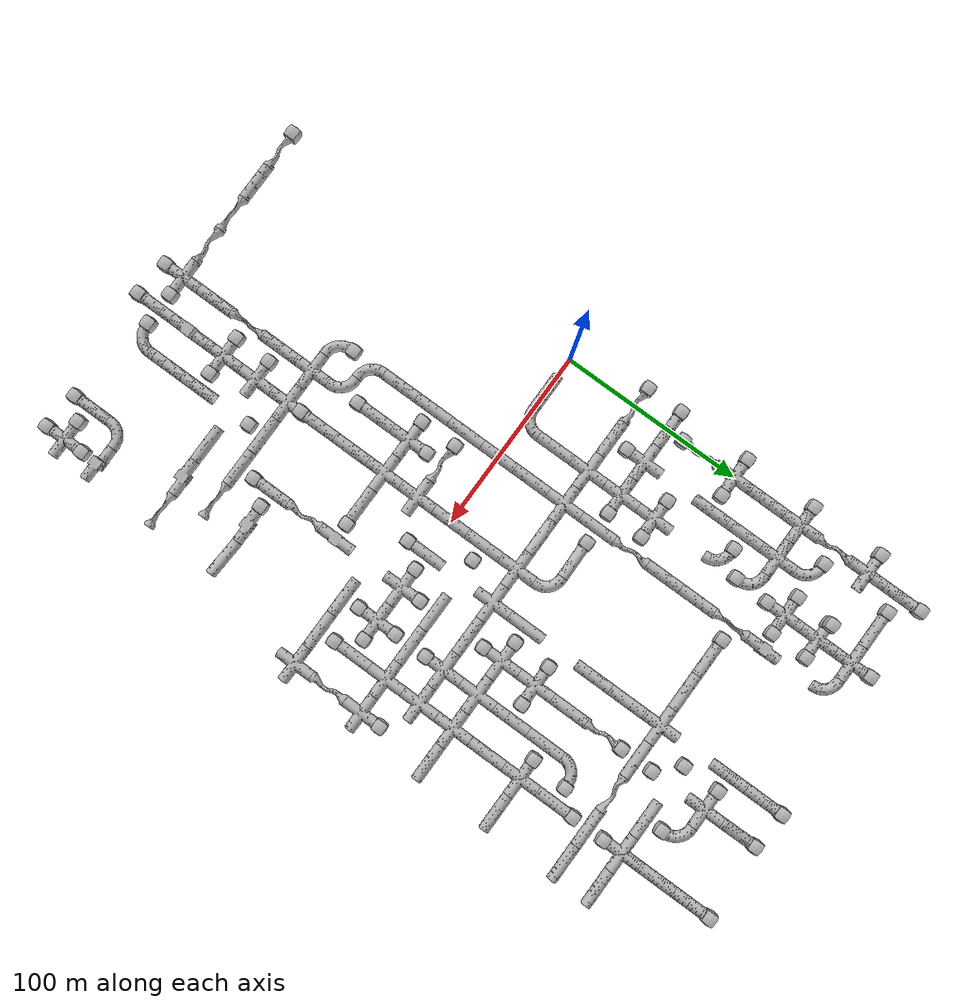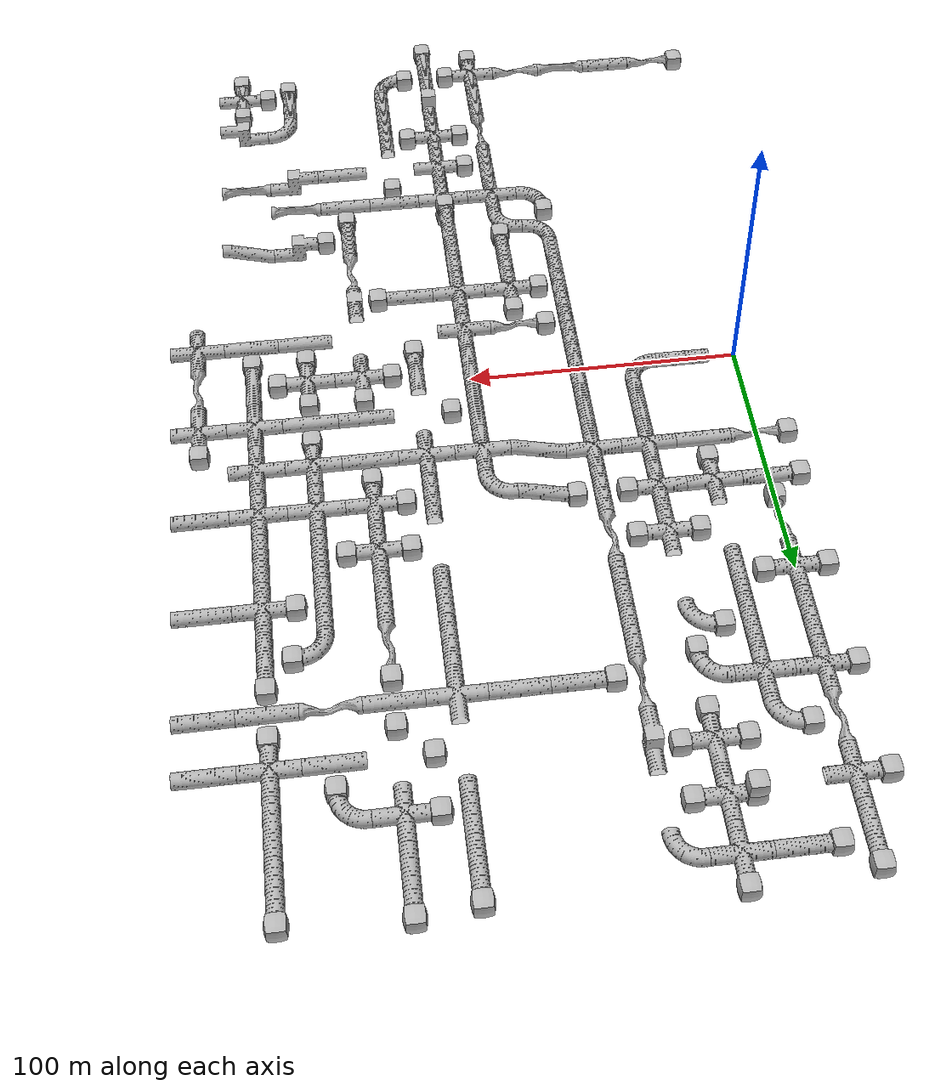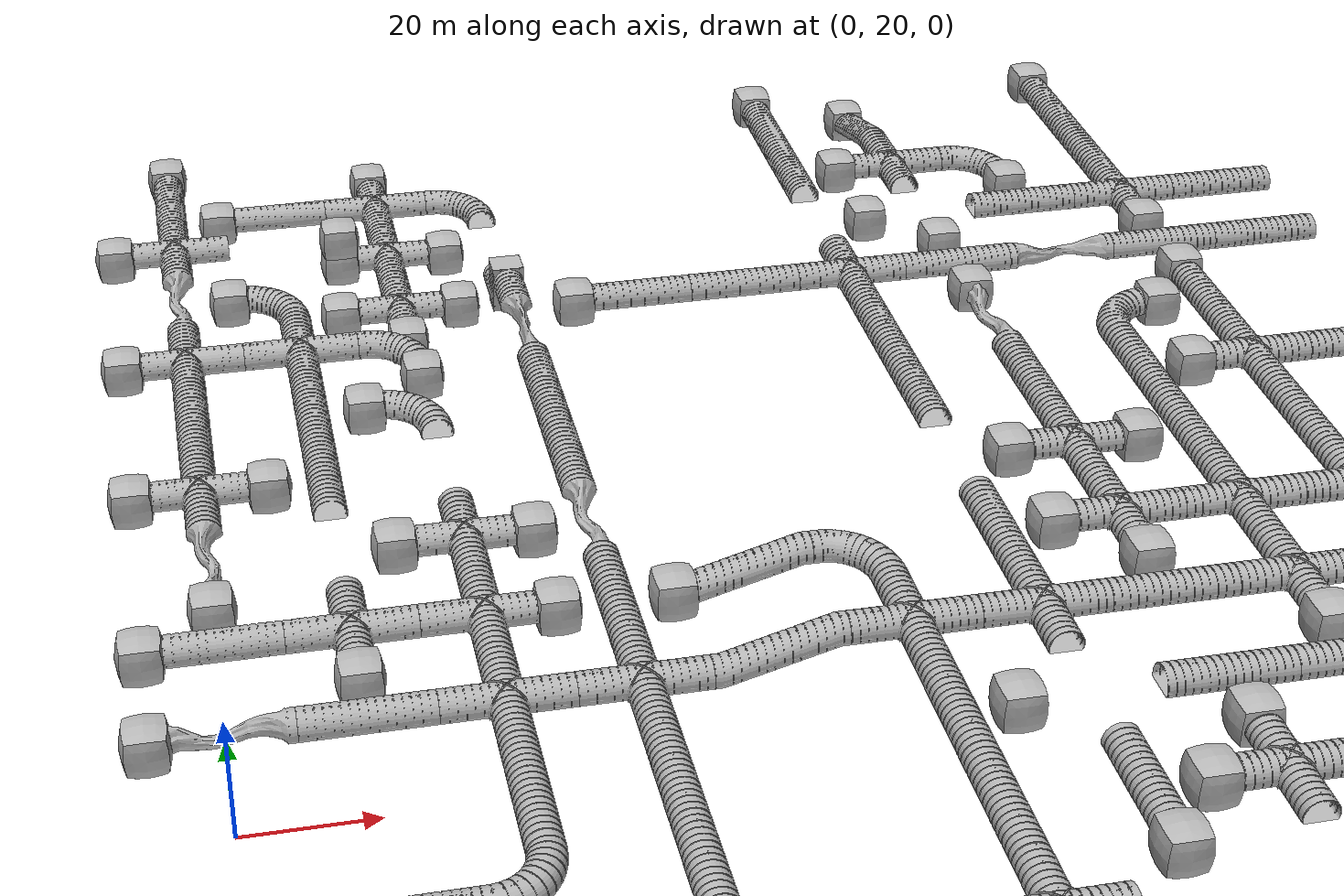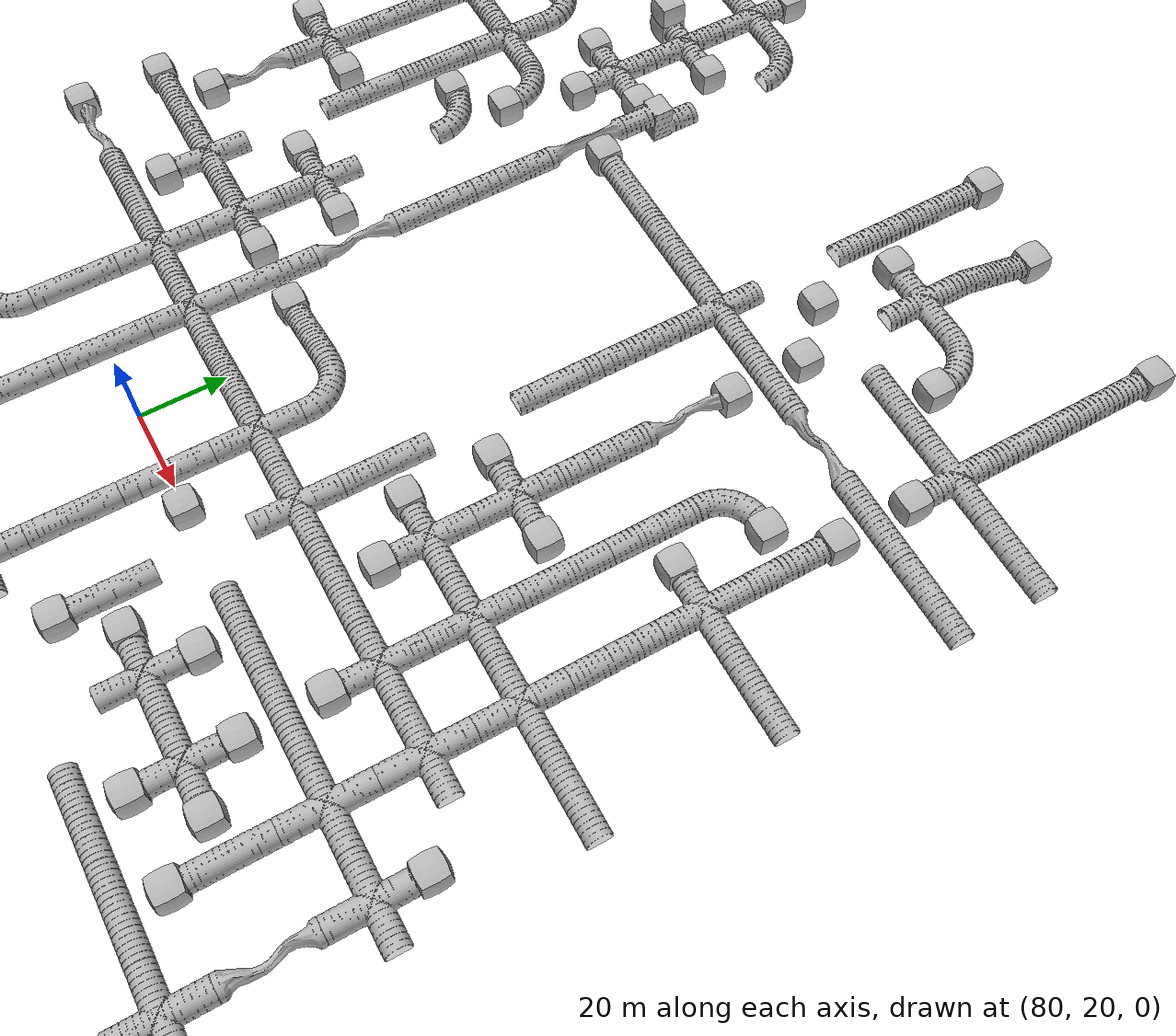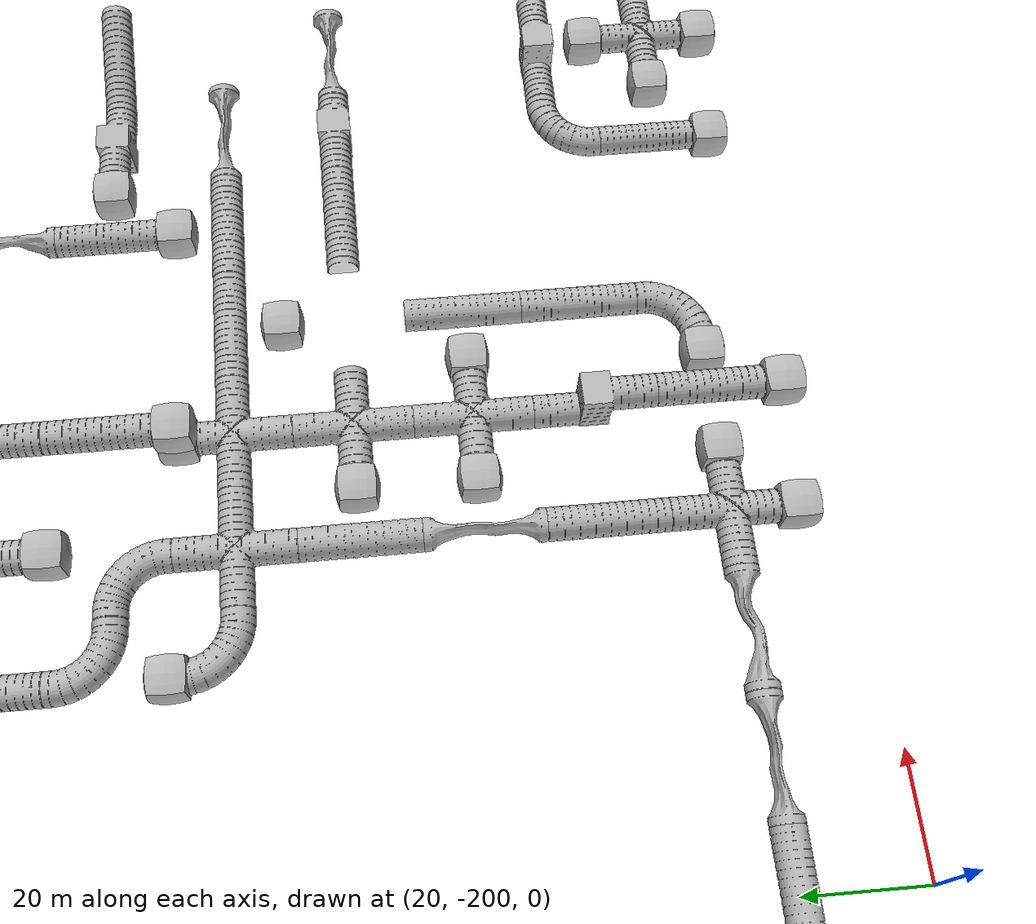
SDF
<sdf version="1.6">
 <world name="tunnel_circuit_01">
  <include><name>artifact_origin</name><pose>2 4 0.5 0 0 0</pose><uri>model://fiducial</uri></include>
  <include>
   <name>tile_1</name>
   <uri>model://tunnel_tile_5</uri>
   <pose>0.000000 200.000000 0.000000 0 0 3.141593</pose>
  </include>
  <include>
   <name>tile_2</name>
   <uri>model://tunnel_tile_blocker</uri>
   <pose>0.000000 211.000000 0.000000 0 0 0.000000</pose>
  </include>
  <include>
   <name>tile_3</name>
   <uri>model://tunnel_tile_5</uri>
   <pose>20.000000 200.000000 -5.000000 0 0 4.712389</pose>
  </include>
  <include>
   <name>tile_4</name>
   <uri>model://tunnel_tile_blocker</uri>
   <pose>9.000000 200.000000 -5.000000 0 0 0.000000</pose>
  </include>
  <include>
   <name>tile_5</name>
   <uri>model://tunnel_tile_1</uri>
   <pose>40.000000 200.000000 -5.000000 0 0 0.000000</pose>
  </include>
  <include>
   <name>tile_6</name>
   <uri>model://tunnel_tile_blocker</uri>
   <pose>40.000000 211.000000 -5.000000 0 0 0.000000</pose>
  </include>
  <include>
   <name>tile_7</name>
   <uri>model://tunnel_tile_2</uri>
   <pose>60.000000 200.000000 -5.000000 0 0 4.712389</pose>
  </include>
  <include>
   <name>extinguisher_1</name>
   <uri>model://Extinguisher</uri>
   <pose>60.000000 191.000000 -5.000000 0 0 0.000000</pose>
  </include>
  <include>
   <name>tile_8</name>
   <uri>model://tunnel_tile_5</uri>
   <pose>120.000000 200.000000 5.000000 0 0 3.141593</pose>
  </include>
  <include>
   <name>tile_9</name>
   <uri>model://tunnel_tile_blocker</uri>
   <pose>120.000000 211.000000 5.000000 0 0 0.000000</pose>
  </include>
  <include>
   <name>tile_10</name>
   <uri>model://tunnel_tile_6</uri>
   <pose>140.000000 200.000000 0.000000 0 0 3.141593</pose>
  </include>
  <include>
   <name>tile_11</name>
   <uri>model://tunnel_tile_blocker</uri>
   <pose>140.000000 211.000000 0.000000 0 0 0.000000</pose>
  </include>
  <include>
   <name>backpack_1</name>
   <uri>model://Backpack</uri>
   <pose>140.000000 200.000000 2.500000 -0.314159 0 0.000000</pose>
  </include>
  <include>
   <name>tile_12</name>
   <uri>model://tunnel_tile_5</uri>
   <pose>180.000000 200.000000 5.000000 0 0 3.141593</pose>
  </include>
  <include>
   <name>tile_13</name>
   <uri>model://tunnel_tile_blocker</uri>
   <pose>180.000000 211.000000 5.000000 0 0 0.000000</pose>
  </include>
  <include>
   <name>tile_22</name>
   <uri>model://tunnel_tile_1</uri>
   <pose>0.000000 180.000000 0.000000 0 0 0.000000</pose>
  </include>
  <include>
   <name>tile_23</name>
   <uri>model://tunnel_tile_blocker</uri>
   <pose>-11.000000 180.000000 0.000000 0 0 0.000000</pose>
  </include>
  <include>
   <name>tile_25</name>
   <uri>model://tunnel_tile_blocker</uri>
   <pose>31.000000 180.000000 0.000000 0 0 0.000000</pose>
  </include>
  <include>
   <name>tile_26</name>
   <uri>model://tunnel_tile_1</uri>
   <pose>40.000000 180.000000 -5.000000 0 0 0.000000</pose>
  </include>
  <include>
   <name>tile_27</name>
   <uri>model://tunnel_tile_blocker</uri>
   <pose>51.000000 180.000000 -5.000000 0 0 0.000000</pose>
  </include>
  <include>
   <name>tile_28</name>
   <uri>model://tunnel_tile_blocker</uri>
   <pose>31.000000 180.000000 -5.000000 0 0 0.000000</pose>
  </include>
  <include>
   <name>tile_30</name>
   <uri>model://tunnel_tile_5</uri>
   <pose>120.000000 180.000000 5.000000 0 0 3.141593</pose>
  </include>
  <include>
   <name>tile_31</name>
   <uri>model://tunnel_tile_1</uri>
   <pose>140.000000 180.000000 5.000000 0 0 0.000000</pose>
  </include>
  <include>
   <name>tile_32</name>
   <uri>model://tunnel_tile_blocker</uri>
   <pose>129.000000 180.000000 5.000000 0 0 0.000000</pose>
  </include>
  <include>
   <name>tile_33</name>
   <uri>model://tunnel_tile_2</uri>
   <pose>160.000000 180.000000 5.000000 0 0 4.712389</pose>
  </include>
  <include>
   <name>tile_34</name>
   <uri>model://tunnel_tile_blocker</uri>
   <pose>160.000000 169.000000 5.000000 0 0 0.000000</pose>
  </include>
  <include>
   <name>tile_35</name>
   <uri>model://tunnel_tile_5</uri>
   <pose>180.000000 180.000000 5.000000 0 0 3.141593</pose>
  </include>
  <include>
   <name>tile_40</name>
   <uri>model://constrained_tunnel_tile_short</uri>
   <pose>0.000000 160.000000 0.000000 0 0 3.141593</pose>
  </include>
  <include>
   <name>tile_41</name>
   <uri>model://tunnel_tile_2</uri>
   <pose>20.000000 160.000000 0.000000 0 0 4.712389</pose>
  </include>
  <include>
   <name>tile_42</name>
   <uri>model://tunnel_tile_blocker</uri>
   <pose>9.000000 160.000000 0.000000 0 0 0.000000</pose>
  </include>
  <include>
   <name>tile_43</name>
   <uri>model://tunnel_tile_1</uri>
   <pose>40.000000 160.000000 -5.000000 0 0 0.000000</pose>
  </include>
  <include>
   <name>tile_44</name>
   <uri>model://tunnel_tile_blocker</uri>
   <pose>51.000000 160.000000 -5.000000 0 0 0.000000</pose>
  </include>
  <include>
   <name>tile_45</name>
   <uri>model://tunnel_tile_blocker</uri>
   <pose>29.000000 160.000000 -5.000000 0 0 0.000000</pose>
  </include>
  <include>
   <name>tile_46</name>
   <uri>model://tunnel_tile_blocker</uri>
   <pose>40.000000 149.000000 -5.000000 0 0 0.000000</pose>
  </include>
  <include>
   <name>tile_47</name>
   <uri>model://tunnel_tile_7</uri>
   <pose>60.000000 160.000000 -5.000000 0 0 3.141593</pose>
  </include>
  <include>
   <name>tile_50</name>
   <uri>model://tunnel_tile_blocker</uri>
   <pose>140.000000 149.000000 5.000000 0 0 0.000000</pose>
  </include>
  <include>
   <name>tile_51</name>
   <uri>model://tunnel_tile_blocker</uri>
   <pose>129.000000 160.000000 5.000000 0 0 0.000000</pose>
  </include>
  <include>
   <name>tile_52</name>
   <uri>model://tunnel_tile_5</uri>
   <pose>160.000000 160.000000 5.000000 0 0 4.712389</pose>
  </include>
  <include>
   <name>tile_53</name>
   <uri>model://tunnel_tile_1</uri>
   <pose>180.000000 160.000000 5.000000 0 0 0.000000</pose>
  </include>
  <include>
   <name>tile_54</name>
   <uri>model://tunnel_tile_blocker</uri>
   <pose>180.000000 149.000000 5.000000 0 0 0.000000</pose>
  </include>
  <include>
   <name>tile_55</name>
   <uri>model://tunnel_tile_5</uri>
   <pose>200.000000 160.000000 5.000000 0 0 4.712389</pose>
  </include>
  <include>
   <name>tile_67</name>
   <uri>model://tunnel_tile_1</uri>
   <pose>0.000000 140.000000 0.000000 0 0 0.000000</pose>
  </include>
  <include>
   <name>tile_68</name>
   <uri>model://tunnel_tile_blocker</uri>
   <pose>-11.000000 140.000000 0.000000 0 0 0.000000</pose>
  </include>
  <include>
   <name>tile_69</name>
   <uri>model://tunnel_tile_1</uri>
   <pose>20.000000 140.000000 0.000000 0 0 0.000000</pose>
  </include>
  <include>
   <name>tile_70</name>
   <uri>model://tunnel_tile_2</uri>
   <pose>40.000000 140.000000 0.000000 0 0 4.712389</pose>
  </include>
  <include>
   <name>tile_71</name>
   <uri>model://tunnel_tile_blocker</uri>
   <pose>40.000000 129.000000 0.000000 0 0 0.000000</pose>
  </include>
  <include>
   <name>tile_72</name>
   <uri>model://constrained_tunnel_tile_tall</uri>
   <pose>60.000000 140.000000 0.000000 0 0 3.141593</pose>
  </include>
  <include>
   <name>tile_73</name>
   <uri>model://tunnel_tile_5</uri>
   <pose>80.000000 140.000000 5.000000 0 0 4.712389</pose>
  </include>
  <include>
   <name>tile_74</name>
   <uri>model://tunnel_tile_blocker</uri>
   <pose>69.000000 140.000000 5.000000 0 0 0.000000</pose>
  </include>
  <include>
   <name>tile_75</name>
   <uri>model://tunnel_tile_5</uri>
   <pose>100.000000 140.000000 5.000000 0 0 4.712389</pose>
  </include>
  <include>
   <name>tile_76</name>
   <uri>model://tunnel_tile_1</uri>
   <pose>120.000000 140.000000 5.000000 0 0 0.000000</pose>
  </include>
  <include>
   <name>tile_77</name>
   <uri>model://tunnel_tile_5</uri>
   <pose>140.000000 140.000000 5.000000 0 0 1.570796</pose>
  </include>
  <include>
   <name>tile_78</name>
   <uri>model://constrained_tunnel_tile_short</uri>
   <pose>160.000000 140.000000 5.000000 0 0 1.570796</pose>
  </include>
  <include>
   <name>tile_79</name>
   <uri>model://tunnel_tile_5</uri>
   <pose>180.000000 140.000000 5.000000 0 0 1.570796</pose>
  </include>
  <include>
   <name>tile_80</name>
   <uri>model://tunnel_tile_5</uri>
   <pose>200.000000 140.000000 5.000000 0 0 1.570796</pose>
  </include>
  <include>
   <name>tile_90</name>
   <uri>model://tunnel_tile_5</uri>
   <pose>0.000000 120.000000 0.000000 0 0 0.000000</pose>
  </include>
  <include>
   <name>backpack_3</name>
   <uri>model://Backpack</uri>
   <pose>0.000000 120.000000 0.000000 0 0 0.000000</pose>
  </include>
  <include>
   <name>tile_91</name>
   <uri>model://tunnel_tile_5</uri>
   <pose>20.000000 120.000000 0.000000 0 0 3.141593</pose>
  </include>
  <include>
   <name>tile_92</name>
   <uri>model://tunnel_tile_2</uri>
   <pose>40.000000 120.000000 0.000000 0 0 4.712389</pose>
  </include>
  <include>
   <name>tile_93</name>
   <uri>model://tunnel_tile_blocker</uri>
   <pose>29.000000 120.000000 0.000000 0 0 0.000000</pose>
  </include>
  <include>
   <name>tile_94</name>
   <uri>model://tunnel_tile_5</uri>
   <pose>60.000000 120.000000 0.000000 0 0 3.141593</pose>
  </include>
  <include>
   <name>tile_95</name>
   <uri>model://tunnel_tile_5</uri>
   <pose>120.000000 120.000000 5.000000 0 0 3.141593</pose>
  </include>
  <include>
   <name>tile_96</name>
   <uri>model://constrained_tunnel_tile_short</uri>
   <pose>140.000000 120.000000 5.000000 0 0 3.141593</pose>
  </include>
  <include>
   <name>tile_97</name>
   <uri>model://tunnel_tile_blocker</uri>
   <pose>140.000000 131.000000 5.000000 0 0 0.000000</pose>
  </include>
  <include>
   <name>tile_98</name>
   <uri>model://tunnel_tile_2</uri>
   <pose>160.000000 120.000000 5.000000 0 0 0.000000</pose>
  </include>
  <include>
   <name>tile_99</name>
   <uri>model://tunnel_tile_blocker</uri>
   <pose>171.000000 120.000000 5.000000 0 0 0.000000</pose>
  </include>
  <include>
   <name>extinguisher_2</name>
   <uri>model://Extinguisher</uri>
   <pose>162.000000 119.000000 5.000000 0 0 0.000000</pose>
  </include>
  <include>
   <name>tile_100</name>
   <uri>model://tunnel_tile_5</uri>
   <pose>180.000000 120.000000 5.000000 0 0 3.141593</pose>
  </include>
  <include>
   <name>tile_101</name>
   <uri>model://tunnel_tile_blocker</uri>
   <pose>180.000000 131.000000 5.000000 0 0 0.000000</pose>
  </include>
  <include>
   <name>tile_114</name>
   <uri>model://tunnel_tile_1</uri>
   <pose>0.000000 100.000000 0.000000 0 0 0.000000</pose>
  </include>
  <include>
   <name>tile_115</name>
   <uri>model://tunnel_tile_blocker</uri>
   <pose>11.000000 100.000000 0.000000 0 0 0.000000</pose>
  </include>
  <include>
   <name>tile_116</name>
   <uri>model://tunnel_tile_blocker</uri>
   <pose>-11.000000 100.000000 0.000000 0 0 0.000000</pose>
  </include>
  <include>
   <name>tile_117</name>
   <uri>model://tunnel_tile_5</uri>
   <pose>20.000000 100.000000 0.000000 0 0 3.141593</pose>
  </include>
  <include>
   <name>tile_119</name>
   <uri>model://tunnel_tile_5</uri>
   <pose>60.000000 100.000000 0.000000 0 0 3.141593</pose>
  </include>
  <include>
   <name>tile_120</name>
   <uri>model://tunnel_tile_5</uri>
   <pose>120.000000 100.000000 5.000000 0 0 3.141593</pose>
  </include>
  <include>
   <name>tile_121</name>
   <uri>model://tunnel_tile_5</uri>
   <pose>140.000000 100.000000 5.000000 0 0 3.141593</pose>
  </include>
  <include>
   <name>tile_122</name>
   <uri>model://tunnel_tile_5</uri>
   <pose>160.000000 100.000000 5.000000 0 0 3.141593</pose>
  </include>
  <include>
   <name>tile_123</name>
   <uri>model://tunnel_tile_1</uri>
   <pose>180.000000 100.000000 5.000000 0 0 0.000000</pose>
  </include>
  <include>
   <name>tile_124</name>
   <uri>model://tunnel_tile_blocker</uri>
   <pose>169.000000 100.000000 5.000000 0 0 0.000000</pose>
  </include>
  <include>
   <name>tile_125</name>
   <uri>model://tunnel_tile_5</uri>
   <pose>200.000000 100.000000 5.000000 0 0 1.570796</pose>
  </include>
  <include>
   <name>tile_132</name>
   <uri>model://constrained_tunnel_tile_short</uri>
   <pose>0.000000 80.000000 0.000000 0 0 0.000000</pose>
  </include>
  <include>
   <name>tile_133</name>
   <uri>model://tunnel_tile_blocker</uri>
   <pose>0.000000 69.000000 0.000000 0 0 0.000000</pose>
  </include>
  <include>
   <name>tile_135</name>
   <uri>model://tunnel_tile_1</uri>
   <pose>40.000000 80.000000 0.000000 0 0 0.000000</pose>
  </include>
  <include>
   <name>tile_136</name>
   <uri>model://tunnel_tile_blocker</uri>
   <pose>29.000000 80.000000 0.000000 0 0 0.000000</pose>
  </include>
  <include>
   <name>tile_137</name>
   <uri>model://tunnel_tile_blocker</uri>
   <pose>51.000000 80.000000 0.000000 0 0 0.000000</pose>
  </include>
  <include>
   <name>tile_138</name>
   <uri>model://constrained_tunnel_tile_short</uri>
   <pose>60.000000 80.000000 0.000000 0 0 3.141593</pose>
  </include>
  <include>
   <name>tile_140</name>
   <uri>model://tunnel_tile_1</uri>
   <pose>140.000000 80.000000 5.000000 0 0 0.000000</pose>
  </include>
  <include>
   <name>tile_141</name>
   <uri>model://tunnel_tile_blocker</uri>
   <pose>129.000000 80.000000 5.000000 0 0 0.000000</pose>
  </include>
  <include>
   <name>tile_142</name>
   <uri>model://tunnel_tile_blocker</uri>
   <pose>151.000000 80.000000 5.000000 0 0 0.000000</pose>
  </include>
  <include>
   <name>tile_143</name>
   <uri>model://tunnel_tile_5</uri>
   <pose>160.000000 80.000000 5.000000 0 0 3.141593</pose>
  </include>
  <include>
   <name>tile_144</name>
   <uri>model://tunnel_tile_5</uri>
   <pose>180.000000 80.000000 5.000000 0 0 3.141593</pose>
  </include>
  <include>
   <name>tile_155</name>
   <uri>model://tunnel_tile_5</uri>
   <pose>0.000000 60.000000 0.000000 0 0 4.712389</pose>
  </include>
  <include>
   <name>tile_156</name>
   <uri>model://tunnel_tile_blocker</uri>
   <pose>-11.000000 60.000000 0.000000 0 0 0.000000</pose>
  </include>
  <include>
   <name>tile_157</name>
   <uri>model://tunnel_tile_1</uri>
   <pose>20.000000 60.000000 0.000000 0 0 0.000000</pose>
  </include>
  <include>
   <name>tile_158</name>
   <uri>model://tunnel_tile_blocker</uri>
   <pose>20.000000 49.000000 0.000000 0 0 0.000000</pose>
  </include>
  <include>
   <name>tile_159</name>
   <uri>model://tunnel_tile_1</uri>
   <pose>40.000000 60.000000 0.000000 0 0 0.000000</pose>
  </include>
  <include>
   <name>tile_160</name>
   <uri>model://tunnel_tile_blocker</uri>
   <pose>51.000000 60.000000 0.000000 0 0 0.000000</pose>
  </include>
  <include>
   <name>tile_161</name>
   <uri>model://tunnel_tile_5</uri>
   <pose>60.000000 60.000000 0.000000 0 0 3.141593</pose>
  </include>
  <include>
   <name>tile_162</name>
   <uri>model://tunnel_tile_6</uri>
   <pose>80.000000 60.000000 0.000000 0 0 4.712389</pose>
  </include>
  <include>
   <name>tile_163</name>
   <uri>model://tunnel_tile_blocker</uri>
   <pose>69.000000 60.000000 0.000000 0 0 0.000000</pose>
  </include>
  <include>
   <name>tile_164</name>
   <uri>model://tunnel_tile_2</uri>
   <pose>100.000000 60.000000 5.000000 0 0 4.712389</pose>
  </include>
  <include>
   <name>tile_165</name>
   <uri>model://tunnel_tile_5</uri>
   <pose>120.000000 60.000000 5.000000 0 0 3.141593</pose>
  </include>
  <include>
   <name>tile_166</name>
   <uri>model://tunnel_tile_1</uri>
   <pose>140.000000 60.000000 5.000000 0 0 0.000000</pose>
  </include>
  <include>
   <name>tile_167</name>
   <uri>model://tunnel_tile_blocker</uri>
   <pose>140.000000 49.000000 5.000000 0 0 0.000000</pose>
  </include>
  <include>
   <name>tile_168</name>
   <uri>model://tunnel_tile_blocker</uri>
   <pose>129.000000 60.000000 5.000000 0 0 0.000000</pose>
  </include>
  <include>
   <name>tile_169</name>
   <uri>model://tunnel_tile_1</uri>
   <pose>160.000000 60.000000 5.000000 0 0 0.000000</pose>
  </include>
  <include>
   <name>tile_170</name>
   <uri>model://tunnel_tile_1</uri>
   <pose>180.000000 60.000000 5.000000 0 0 0.000000</pose>
  </include>
  <include>
   <name>tile_171</name>
   <uri>model://tunnel_tile_5</uri>
   <pose>200.000000 60.000000 5.000000 0 0 1.570796</pose>
  </include>
  <include>
   <name>tile_182</name>
   <uri>model://constrained_tunnel_tile_short</uri>
   <pose>0.000000 40.000000 0.000000 0 0 4.712389</pose>
  </include>
  <include>
   <name>tile_183</name>
   <uri>model://tunnel_tile_blocker</uri>
   <pose>-11.000000 40.000000 0.000000 0 0 0.000000</pose>
  </include>
  <include>
   <name>tile_184</name>
   <uri>model://tunnel_tile_5</uri>
   <pose>20.000000 40.000000 0.000000 0 0 4.712389</pose>
  </include>
  <include>
   <name>tile_185</name>
   <uri>model://tunnel_tile_1</uri>
   <pose>40.000000 40.000000 0.000000 0 0 0.000000</pose>
  </include>
  <include>
   <name>tile_186</name>
   <uri>model://tunnel_tile_1</uri>
   <pose>60.000000 40.000000 0.000000 0 0 0.000000</pose>
  </include>
  <include>
   <name>tile_187</name>
   <uri>model://tunnel_tile_6</uri>
   <pose>80.000000 40.000000 0.000000 0 0 4.712389</pose>
  </include>
  <include>
   <name>tile_188</name>
   <uri>model://tunnel_tile_1</uri>
   <pose>100.000000 40.000000 5.000000 0 0 0.000000</pose>
  </include>
  <include>
   <name>tile_189</name>
   <uri>model://tunnel_tile_1</uri>
   <pose>120.000000 40.000000 5.000000 0 0 0.000000</pose>
  </include>
  <include>
   <name>tile_190</name>
   <uri>model://tunnel_tile_5</uri>
   <pose>140.000000 40.000000 5.000000 0 0 1.570796</pose>
  </include>
  <include>
   <name>tile_191</name>
   <uri>model://tunnel_tile_1</uri>
   <pose>160.000000 40.000000 5.000000 0 0 0.000000</pose>
  </include>
  <include>
   <name>tile_192</name>
   <uri>model://tunnel_tile_blocker</uri>
   <pose>160.000000 29.000000 5.000000 0 0 0.000000</pose>
  </include>
  <include>
   <name>tile_193</name>
   <uri>model://tunnel_tile_1</uri>
   <pose>180.000000 40.000000 5.000000 0 0 0.000000</pose>
  </include>
  <include>
   <name>tile_205</name>
   <uri>model://tunnel_tile_5</uri>
   <pose>40.000000 20.000000 0.000000 0 0 3.141593</pose>
  </include>
  <include>
   <name>tile_206</name>
   <uri>model://tunnel_tile_5</uri>
   <pose>60.000000 20.000000 0.000000 0 0 0.000000</pose>
  </include>
  <include>
   <name>tile_207</name>
   <uri>model://tunnel_tile_5</uri>
   <pose>100.000000 20.000000 5.000000 0 0 0.000000</pose>
  </include>
  <include>
   <name>tile_209</name>
   <uri>model://tunnel_tile_blocker</uri>
   <pose>109.000000 20.000000 5.000000 0 0 0.000000</pose>
  </include>
  <include>
   <name>tile_210</name>
   <uri>model://tunnel_tile_5</uri>
   <pose>140.000000 20.000000 5.000000 0 0 1.570796</pose>
  </include>
  <include>
   <name>tile_211</name>
   <uri>model://tunnel_tile_5</uri>
   <pose>160.000000 20.000000 5.000000 0 0 1.570796</pose>
  </include>
  <include>
   <name>tile_212</name>
   <uri>model://tunnel_tile_1</uri>
   <pose>180.000000 20.000000 5.000000 0 0 0.000000</pose>
  </include>
  <include>
   <name>tile_213</name>
   <uri>model://tunnel_tile_1</uri>
   <pose>200.000000 20.000000 5.000000 0 0 0.000000</pose>
  </include>
  <include>
   <name>tile_214</name>
   <uri>model://tunnel_tile_blocker</uri>
   <pose>200.000000 31.000000 5.000000 0 0 0.000000</pose>
  </include>
  <include>
   <name>tile_229</name>
   <uri>model://tunnel_tile_5</uri>
   <pose>20.000000 0.000000 0.000000 0 0 1.570796</pose>
  </include>
  <include>
   <name>tile_230</name>
   <uri>model://tunnel_tile_2</uri>
   <pose>40.000000 0.000000 0.000000 0 0 3.141593</pose>
  </include>
  <include>
   <name>tile_231</name>
   <uri>model://tunnel_tile_5</uri>
   <pose>60.000000 0.000000 0.000000 0 0 0.000000</pose>
  </include>
  <include>
   <name>tile_232</name>
   <uri>model://tunnel_tile_5</uri>
   <pose>100.000000 0.000000 5.000000 0 0 0.000000</pose>
  </include>
  <include>
   <name>tile_233</name>
   <uri>model://tunnel_tile_5</uri>
   <pose>120.000000 0.000000 5.000000 0 0 0.000000</pose>
  </include>
  <include>
   <name>tile_234</name>
   <uri>model://tunnel_tile_blocker</uri>
   <pose>120.000000 -11.000000 5.000000 0 0 0.000000</pose>
  </include>
  <include>
   <name>tile_235</name>
   <uri>model://tunnel_tile_1</uri>
   <pose>140.000000 0.000000 5.000000 0 0 0.000000</pose>
  </include>
  <include>
   <name>tile_236</name>
   <uri>model://tunnel_tile_blocker</uri>
   <pose>129.000000 0.000000 5.000000 0 0 0.000000</pose>
  </include>
  <include>
   <name>tile_237</name>
   <uri>model://tunnel_tile_blocker</uri>
   <pose>140.000000 11.000000 5.000000 0 0 0.000000</pose>
  </include>
  <include>
   <name>tile_238</name>
   <uri>model://tunnel_tile_1</uri>
   <pose>160.000000 0.000000 5.000000 0 0 0.000000</pose>
  </include>
  <include>
   <name>tile_239</name>
   <uri>model://tunnel_tile_blocker</uri>
   <pose>160.000000 11.000000 5.000000 0 0 0.000000</pose>
  </include>
  <include>
   <name>tile_240</name>
   <uri>model://tunnel_tile_blocker</uri>
   <pose>160.000000 -11.000000 5.000000 0 0 0.000000</pose>
  </include>
  <include>
   <name>tile_241</name>
   <uri>model://tunnel_tile_blocker</uri>
   <pose>171.000000 0.000000 5.000000 0 0 0.000000</pose>
  </include>
  <include>
   <name>tile_242</name>
   <uri>model://tunnel_tile_5</uri>
   <pose>180.000000 0.000000 5.000000 0 0 0.000000</pose>
  </include>
  <include>
   <name>tile_243</name>
   <uri>model://tunnel_tile_blocker</uri>
   <pose>180.000000 -11.000000 5.000000 0 0 0.000000</pose>
  </include>
  <include>
   <name>tile_244</name>
   <uri>model://constrained_tunnel_tile_short</uri>
   <pose>200.000000 0.000000 5.000000 0 0 0.000000</pose>
  </include>
  <include>
   <name>tile_256</name>
   <uri>model://tunnel_tile_5</uri>
   <pose>60.000000 -20.000000 0.000000 0 0 0.000000</pose>
  </include>
  <include>
   <name>tile_257</name>
   <uri>model://constrained_tunnel_tile_short</uri>
   <pose>80.000000 -20.000000 5.000000 0 0 4.712389</pose>
  </include>
  <include>
   <name>tile_258</name>
   <uri>model://tunnel_tile_blocker</uri>
   <pose>69.000000 -20.000000 5.000000 0 0 0.000000</pose>
  </include>
  <include>
   <name>tile_259</name>
   <uri>model://tunnel_tile_1</uri>
   <pose>100.000000 -20.000000 5.000000 0 0 0.000000</pose>
  </include>
  <include>
   <name>tile_262</name>
   <uri>model://tunnel_tile_5</uri>
   <pose>160.000000 -20.000000 5.000000 0 0 1.570796</pose>
  </include>
  <include>
   <name>phone_2</name>
   <uri>model://Phone</uri>
   <pose>168.000000 -18.400000 5.004000 -1.570796 0 2.356194</pose>
  </include>
  <include>
   <name>tile_263</name>
   <uri>model://tunnel_tile_5</uri>
   <pose>180.000000 -20.000000 5.000000 0 0 1.570796</pose>
  </include>
  <include>
   <name>tile_264</name>
   <uri>model://tunnel_tile_1</uri>
   <pose>200.000000 -20.000000 5.000000 0 0 0.000000</pose>
  </include>
  <include>
   <name>tile_279</name>
   <uri>model://tunnel_tile_5</uri>
   <pose>60.000000 -40.000000 0.000000 0 0 0.000000</pose>
  </include>
  <include>
   <name>tile_280</name>
   <uri>model://tunnel_tile_1</uri>
   <pose>80.000000 -40.000000 5.000000 0 0 0.000000</pose>
  </include>
  <include>
   <name>tile_281</name>
   <uri>model://tunnel_tile_blocker</uri>
   <pose>80.000000 -29.000000 5.000000 0 0 0.000000</pose>
  </include>
  <include>
   <name>tile_282</name>
   <uri>model://tunnel_tile_blocker</uri>
   <pose>69.000000 -40.000000 5.000000 0 0 0.000000</pose>
  </include>
  <include>
   <name>tile_283</name>
   <uri>model://tunnel_tile_1</uri>
   <pose>100.000000 -40.000000 5.000000 0 0 0.000000</pose>
  </include>
  <include>
   <name>tile_284</name>
   <uri>model://tunnel_tile_5</uri>
   <pose>120.000000 -40.000000 5.000000 0 0 1.570796</pose>
  </include>
  <include>
   <name>tile_285</name>
   <uri>model://tunnel_tile_blocker</uri>
   <pose>131.000000 -40.000000 5.000000 0 0 0.000000</pose>
  </include>
  <include>
   <name>tile_286</name>
   <uri>model://tunnel_tile_7</uri>
   <pose>140.000000 -40.000000 0.000000 0 0 0.000000</pose>
  </include>
  <include>
   <name>tile_299</name>
   <uri>model://tunnel_tile_5</uri>
   <pose>60.000000 -60.000000 0.000000 0 0 0.000000</pose>
  </include>
  <include>
   <name>tile_300</name>
   <uri>model://tunnel_tile_5</uri>
   <pose>80.000000 -60.000000 5.000000 0 0 0.000000</pose>
  </include>
  <include>
   <name>tile_301</name>
   <uri>model://tunnel_tile_blocker</uri>
   <pose>80.000000 -71.000000 5.000000 0 0 0.000000</pose>
  </include>
  <include>
   <name>phone_4</name>
   <uri>model://Phone</uri>
   <pose>81.500000 -60.000000 5.004000 -1.570796 0 0.000000</pose>
  </include>
  <include>
   <name>tile_302</name>
   <uri>model://tunnel_tile_5</uri>
   <pose>100.000000 -60.000000 5.000000 0 0 0.000000</pose>
  </include>
  <include>
   <name>tile_303</name>
   <uri>model://constrained_tunnel_tile_short</uri>
   <pose>140.000000 -60.000000 0.000000 0 0 0.000000</pose>
  </include>
  <include>
   <name>tile_318</name>
   <uri>model://tunnel_tile_2</uri>
   <pose>60.000000 -80.000000 0.000000 0 0 1.570796</pose>
  </include>
  <include>
   <name>tile_319</name>
   <uri>model://tunnel_tile_2</uri>
   <pose>80.000000 -80.000000 0.000000 0 0 4.712389</pose>
  </include>
  <include>
   <name>tile_320</name>
   <uri>model://tunnel_tile_5</uri>
   <pose>100.000000 -80.000000 5.000000 0 0 0.000000</pose>
  </include>
  <include>
   <name>tile_321</name>
   <uri>model://tunnel_tile_blocker</uri>
   <pose>100.000000 -91.000000 5.000000 0 0 0.000000</pose>
  </include>
  <include>
   <name>tile_322</name>
   <uri>model://tunnel_tile_5</uri>
   <pose>140.000000 -80.000000 0.000000 0 0 0.000000</pose>
  </include>
  <include>
   <name>tile_323</name>
   <uri>model://tunnel_tile_blocker</uri>
   <pose>140.000000 -91.000000 0.000000 0 0 0.000000</pose>
  </include>
  <include>
   <name>tile_324</name>
   <uri>model://tunnel_tile_7</uri>
   <pose>160.000000 -80.000000 -5.000000 0 0 1.570796</pose>
  </include>
  <include>
   <name>tile_325</name>
   <uri>model://tunnel_tile_blocker</uri>
   <pose>149.000000 -80.000000 0.000000 0 0 0.000000</pose>
  </include>
  <include>
   <name>tile_326</name>
   <uri>model://tunnel_tile_6</uri>
   <pose>180.000000 -80.000000 -5.000000 0 0 4.712389</pose>
  </include>
  <include>
   <name>tile_338</name>
   <uri>model://tunnel_tile_2</uri>
   <pose>60.000000 -100.000000 0.000000 0 0 1.570796</pose>
  </include>
  <include>
   <name>tile_339</name>
   <uri>model://tunnel_tile_blocker</uri>
   <pose>60.000000 -89.000000 0.000000 0 0 0.000000</pose>
  </include>
  <include>
   <name>tile_340</name>
   <uri>model://tunnel_tile_1</uri>
   <pose>80.000000 -100.000000 0.000000 0 0 0.000000</pose>
  </include>
  <include>
   <name>tile_341</name>
   <uri>model://tunnel_tile_1</uri>
   <pose>100.000000 -100.000000 0.000000 0 0 0.000000</pose>
  </include>
  <include>
   <name>tile_342</name>
   <uri>model://tunnel_tile_blocker</uri>
   <pose>100.000000 -91.000000 0.000000 0 0 0.000000</pose>
  </include>
  <include>
   <name>tile_343</name>
   <uri>model://tunnel_tile_5</uri>
   <pose>120.000000 -100.000000 0.000000 0 0 1.570796</pose>
  </include>
  <include>
   <name>tile_344</name>
   <uri>model://tunnel_tile_5</uri>
   <pose>140.000000 -100.000000 0.000000 0 0 1.570796</pose>
  </include>
  <include>
   <name>tile_345</name>
   <uri>model://constrained_tunnel_tile_tall</uri>
   <pose>160.000000 -100.000000 0.000000 0 0 1.570796</pose>
  </include>
  <include>
   <name>tile_362</name>
   <uri>model://tunnel_tile_5</uri>
   <pose>80.000000 -120.000000 0.000000 0 0 0.000000</pose>
  </include>
  <include>
   <name>tile_363</name>
   <uri>model://tunnel_tile_1</uri>
   <pose>100.000000 -120.000000 0.000000 0 0 0.000000</pose>
  </include>
  <include>
   <name>tile_364</name>
   <uri>model://tunnel_tile_blocker</uri>
   <pose>89.000000 -120.000000 0.000000 0 0 0.000000</pose>
  </include>
  <include>
   <name>tile_366</name>
   <uri>model://tunnel_tile_blocker</uri>
   <pose>120.000000 -109.000000 0.000000 0 0 0.000000</pose>
  </include>
  <include>
   <name>tile_367</name>
   <uri>model://tunnel_tile_5</uri>
   <pose>140.000000 -120.000000 0.000000 0 0 1.570796</pose>
  </include>
  <include>
   <name>tile_368</name>
   <uri>model://tunnel_tile_7</uri>
   <pose>160.000000 -120.000000 -5.000000 0 0 1.570796</pose>
  </include>
  <include>
   <name>tile_369</name>
   <uri>model://constrained_tunnel_tile_tall</uri>
   <pose>180.000000 -120.000000 -5.000000 0 0 1.570796</pose>
  </include>
  <include>
   <name>tile_382</name>
   <uri>model://constrained_tunnel_tile_tall</uri>
   <pose>80.000000 -140.000000 0.000000 0 0 0.000000</pose>
  </include>
  <include>
   <name>tile_383</name>
   <uri>model://tunnel_tile_1</uri>
   <pose>100.000000 -140.000000 0.000000 0 0 0.000000</pose>
  </include>
  <include>
   <name>tile_384</name>
   <uri>model://tunnel_tile_blocker</uri>
   <pose>111.000000 -140.000000 0.000000 0 0 0.000000</pose>
  </include>
  <include>
   <name>tile_385</name>
   <uri>model://tunnel_tile_blocker</uri>
   <pose>89.000000 -140.000000 0.000000 0 0 0.000000</pose>
  </include>
  <include>
   <name>tile_386</name>
   <uri>model://tunnel_tile_5</uri>
   <pose>120.000000 -140.000000 0.000000 0 0 0.000000</pose>
  </include>
  <include>
   <name>tile_395</name>
   <uri>model://tunnel_tile_5</uri>
   <pose>80.000000 -160.000000 0.000000 0 0 0.000000</pose>
  </include>
  <include>
   <name>tile_396</name>
   <uri>model://tunnel_tile_7</uri>
   <pose>100.000000 -160.000000 0.000000 0 0 3.141593</pose>
  </include>
  <include>
   <name>tile_397</name>
   <uri>model://tunnel_tile_5</uri>
   <pose>120.000000 -160.000000 0.000000 0 0 0.000000</pose>
  </include>
  <include>
   <name>tile_398</name>
   <uri>model://tunnel_tile_2</uri>
   <pose>160.000000 -160.000000 -10.000000 0 0 0.000000</pose>
  </include>
  <include>
   <name>tile_399</name>
   <uri>model://tunnel_tile_7</uri>
   <pose>180.000000 -160.000000 -10.000000 0 0 4.712389</pose>
  </include>
  <include>
   <name>tile_412</name>
   <uri>model://constrained_tunnel_tile_short</uri>
   <pose>0.000000 -180.000000 0.000000 0 0 4.712389</pose>
  </include>
  <include>
   <name>tile_413</name>
   <uri>model://tunnel_tile_blocker</uri>
   <pose>-11.000000 -180.000000 0.000000 0 0 0.000000</pose>
  </include>
  <include>
   <name>tile_414</name>
   <uri>model://tunnel_tile_5</uri>
   <pose>20.000000 -180.000000 0.000000 0 0 4.712389</pose>
  </include>
  <include>
   <name>tile_415</name>
   <uri>model://constrained_tunnel_tile_tall</uri>
   <pose>40.000000 -180.000000 0.000000 0 0 4.712389</pose>
  </include>
  <include>
   <name>tile_416</name>
   <uri>model://constrained_tunnel_tile_short</uri>
   <pose>60.000000 -180.000000 0.000000 0 0 4.712389</pose>
  </include>
  <include>
   <name>tile_417</name>
   <uri>model://tunnel_tile_1</uri>
   <pose>80.000000 -180.000000 0.000000 0 0 0.000000</pose>
  </include>
  <include>
   <name>tile_418</name>
   <uri>model://tunnel_tile_blocker</uri>
   <pose>91.000000 -180.000000 0.000000 0 0 0.000000</pose>
  </include>
  <include>
   <name>tile_419</name>
   <uri>model://tunnel_tile_blocker</uri>
   <pose>80.000000 -191.000000 0.000000 0 0 0.000000</pose>
  </include>
  <include>
   <name>tile_420</name>
   <uri>model://tunnel_tile_5</uri>
   <pose>100.000000 -180.000000 5.000000 0 0 0.000000</pose>
  </include>
  <include>
   <name>tile_421</name>
   <uri>model://tunnel_tile_blocker</uri>
   <pose>100.000000 -191.000000 5.000000 0 0 0.000000</pose>
  </include>
  <include>
   <name>tile_422</name>
   <uri>model://tunnel_tile_2</uri>
   <pose>120.000000 -180.000000 0.000000 0 0 3.141593</pose>
  </include>
  <include>
   <name>tile_423</name>
   <uri>model://tunnel_tile_blocker</uri>
   <pose>109.000000 -180.000000 0.000000 0 0 0.000000</pose>
  </include>
  <include>
   <name>tile_424</name>
   <uri>model://tunnel_tile_5</uri>
   <pose>160.000000 -180.000000 -10.000000 0 0 0.000000</pose>
  </include>
  <include>
   <name>tile_425</name>
   <uri>model://tunnel_tile_blocker</uri>
   <pose>160.000000 -191.000000 -10.000000 0 0 0.000000</pose>
  </include>
  <include>
   <name>tile_426</name>
   <uri>model://tunnel_tile_1</uri>
   <pose>180.000000 -180.000000 -5.000000 0 0 0.000000</pose>
  </include>
  <include>
   <name>tile_427</name>
   <uri>model://tunnel_tile_blocker</uri>
   <pose>180.000000 -191.000000 -5.000000 0 0 0.000000</pose>
  </include>
  <include>
   <name>tile_428</name>
   <uri>model://tunnel_tile_blocker</uri>
   <pose>180.000000 -169.000000 -5.000000 0 0 0.000000</pose>
  </include>
  <include>
   <name>tile_429</name>
   <uri>model://tunnel_tile_blocker</uri>
   <pose>169.000000 -180.000000 -5.000000 0 0 0.000000</pose>
  </include>
 </world>
</sdf>
